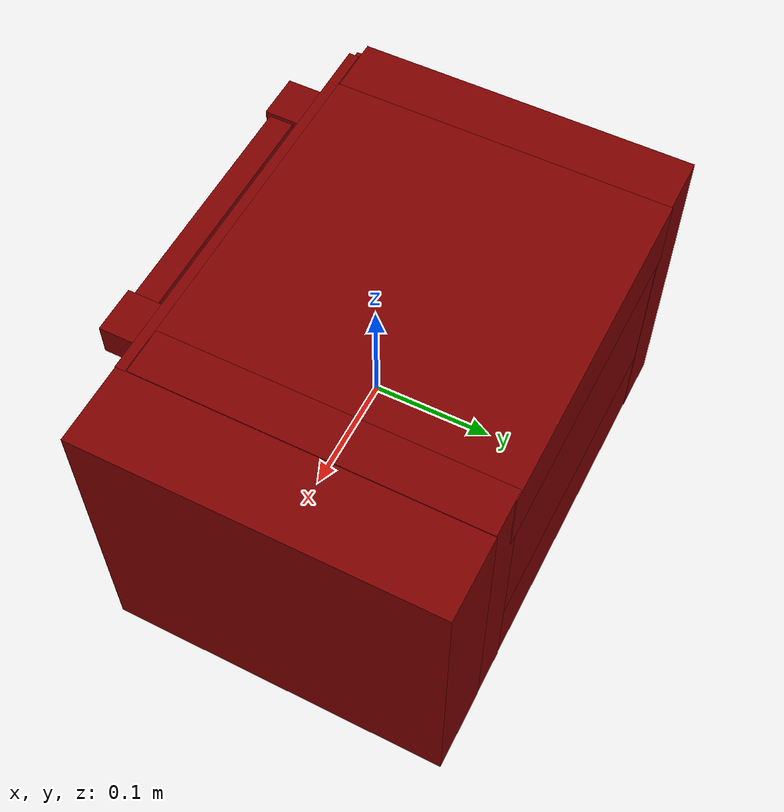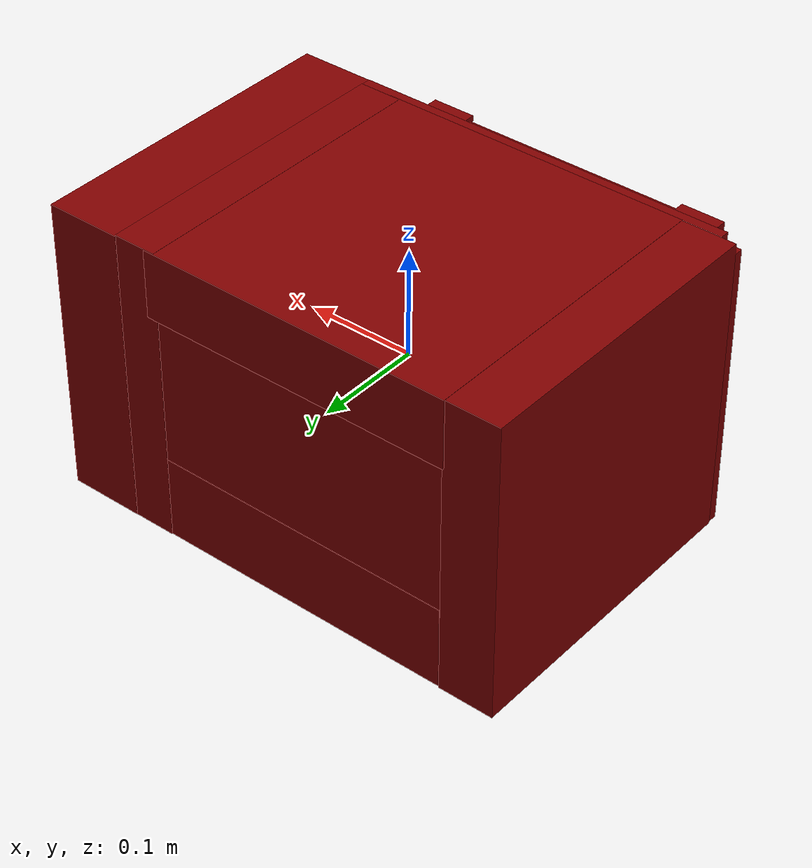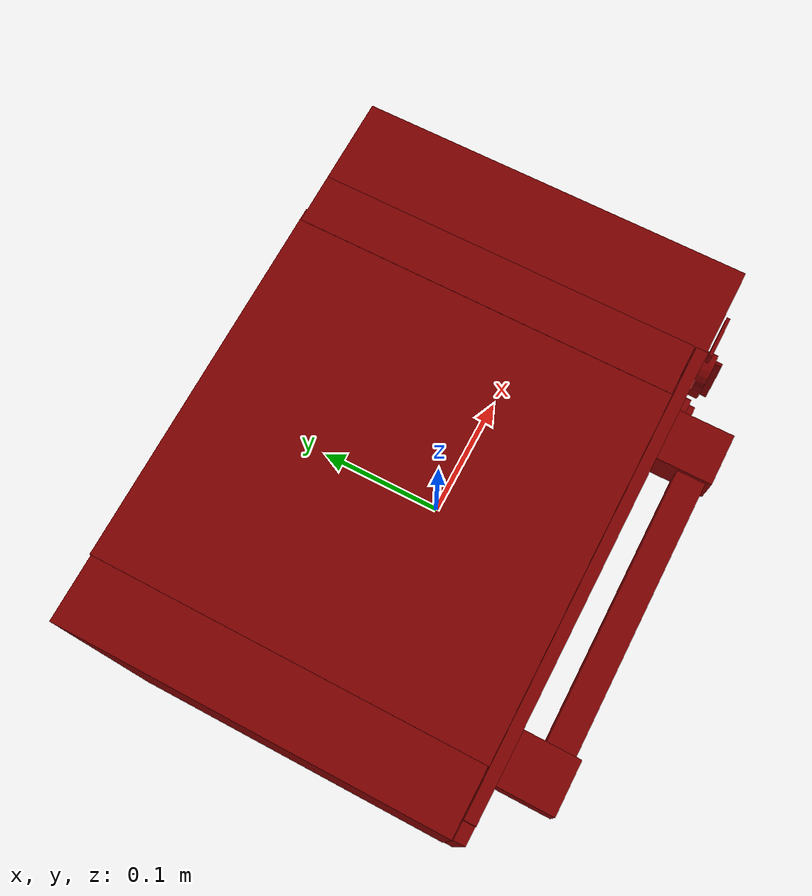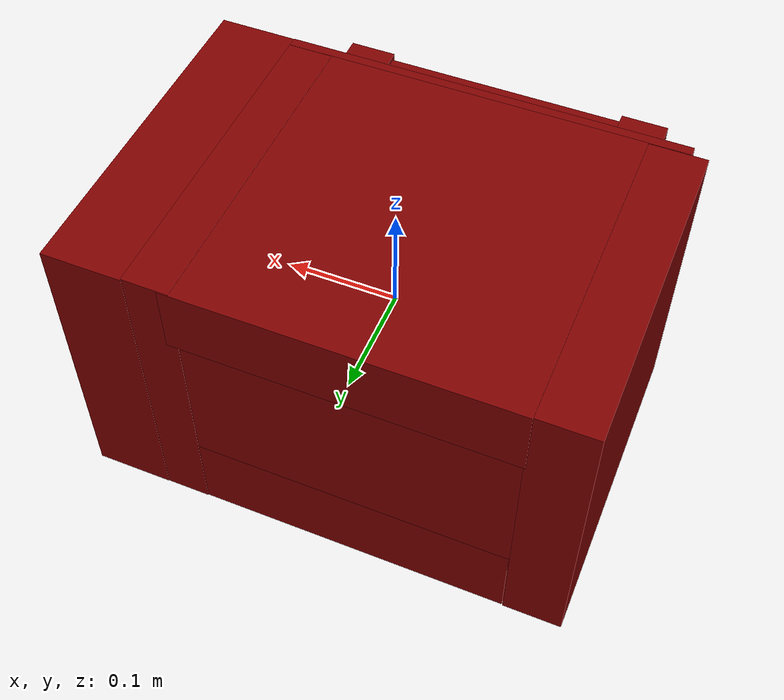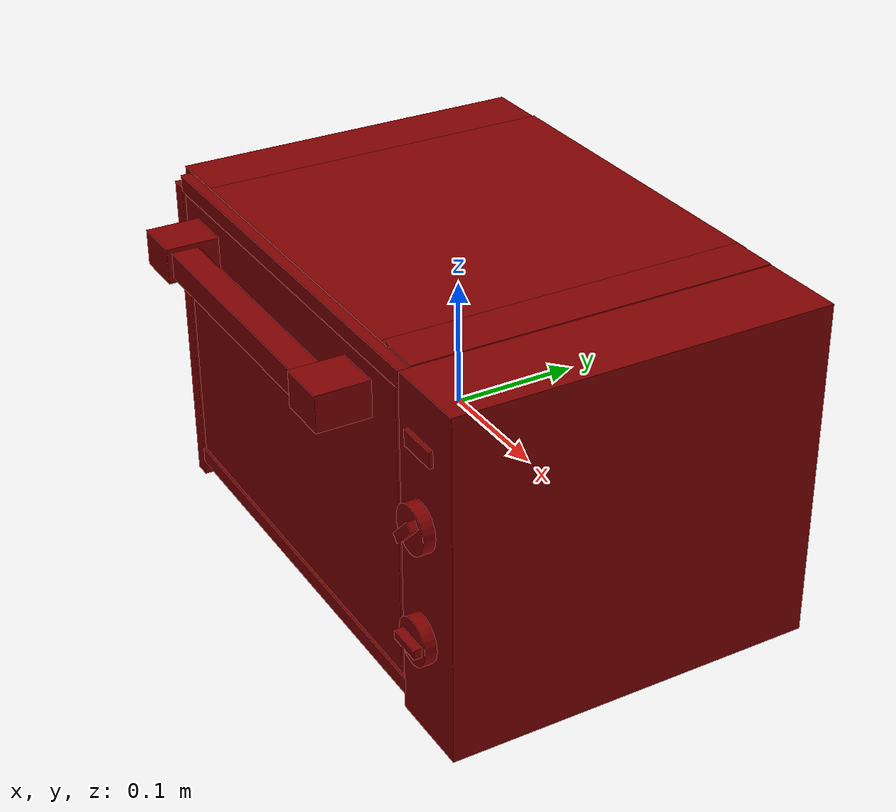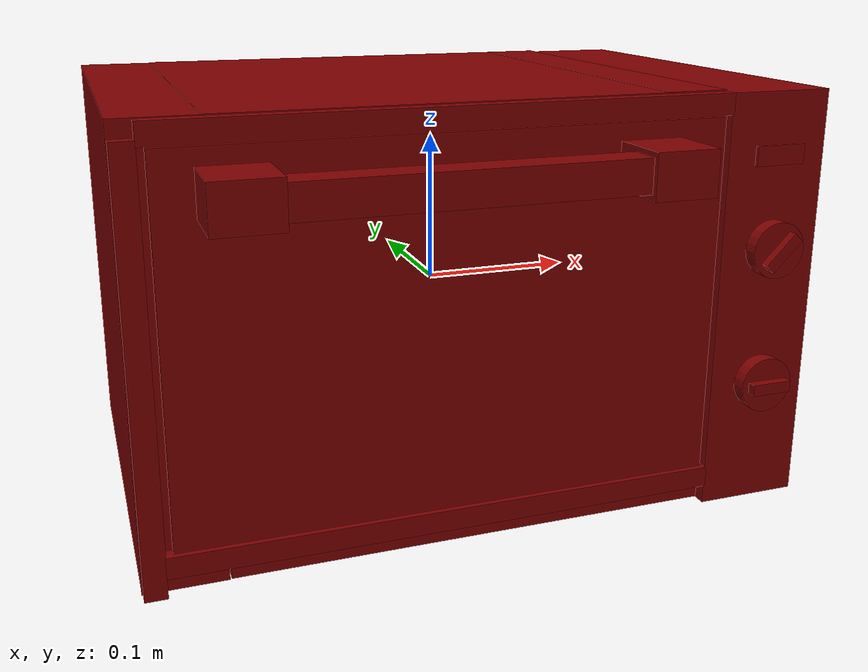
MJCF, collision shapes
<?xml version='1.0' encoding='UTF-8'?>
<mujoco model="model">
  <option timestep="0.002" gravity="0.0 0.0 -9.81"/>
  <compiler angle="radian"/>
  <asset>
    <mesh file="visuals/door.obj" name="door_vis"/>
    <mesh file="visuals/knob_temp.obj" name="knob_temp_vis"/>
    <mesh file="visuals/knob_time.obj" name="knob_time_vis"/>
    <mesh file="visuals/rack0.obj" name="rack0_vis"/>
    <mesh file="visuals/Body001.obj" name="Body001_vis"/>
    <mesh file="visuals/Button001.obj" name="Button001_vis"/>
    <mesh file="visuals/window.obj" name="window_vis"/>
    <texture file="visuals/T_BC001.png" name="Body001_material" type="2d"/>
    <material name="Body001_material" rgba="1 1 1 1.0" texture="Body001_material" shininess="0.1" specular="0.9"/>
    <texture file="visuals/T_BC001.png" name="door_material" type="2d"/>
    <material name="door_material" rgba="1 1 1 1.0" texture="door_material" shininess="0.1" specular="0.9"/>
    <texture file="visuals/T_BC001.png" name="window_material" type="2d"/>
    <material name="window_material" rgba="1 1 1 0.800000011920929" texture="window_material" shininess="0.1" specular="0.9"/>
    <texture file="visuals/T_BC001.png" name="knob_temp_material" type="2d"/>
    <material name="knob_temp_material" rgba="1 1 1 1.0" texture="knob_temp_material" shininess="0.1" specular="0.9"/>
    <texture file="visuals/T_BC001.png" name="knob_time_material" type="2d"/>
    <material name="knob_time_material" rgba="1 1 1 1.0" texture="knob_time_material" shininess="0.1" specular="0.9"/>
    <texture file="visuals/T_BC001.png" name="rack0_material" type="2d"/>
    <material name="rack0_material" rgba="1 1 1 1.0" texture="rack0_material" shininess="0.1" specular="0.9"/>
    <texture file="visuals/T_BC001.png" name="Button001_material" type="2d"/>
    <material name="Button001_material" rgba="1 1 1 1.0" texture="Button001_material" shininess="0.1" specular="0.9"/>
  </asset>
  <default>
    <default class="visual">
      <geom conaffinity="0" contype="0" group="1" type="mesh"/>
    </default>
    <default class="collision">
      <geom group="0" rgba="0.5 0 0 0.5"/>
    </default>
    <default class="spawn">
      <geom group="0" rgba="1 1 1 0.5" contype="0" conaffinity="0"/>
      <site group="0" rgba="1 1 1 0.5"/>
    </default>
    <default class="region">
      <geom group="1" conaffinity="0" contype="0" rgba="0 1 0 0"/>
    </default>
  </default>
  <worldbody>
    <body>
      <body name="object">
        <geom mesh="Body001_vis" type="mesh" solimp="0.998 0.998 0.001" solref="0.001 1" friction="0.95 0.3 0.1" class="visual" material="Body001_material"/>
        <geom class="collision" type="box" pos="-0.1932327300310135 0.023562701418995857 -0.0002324962115380913" size="0.02562784031033516 0.144892156124115 0.1380542665719986" quat="1.0 0.0 0.0 0.0"/>
        <geom class="collision" type="box" pos="0.18368476629257202 0.019207939505577087 -0.00012853697990067303" size="0.03454463183879852 0.1497284322977066 0.13750870525836945" quat="1.0 0.0 0.0 0.0"/>
        <geom class="collision" type="box" pos="-0.02491343580186367 0.023717664182186127 0.10706508159637451" size="0.14444921910762787 0.14566195011138916 0.03105258382856846" quat="1.0 0.0 0.0 0.0"/>
        <geom class="collision" type="box" pos="0.0003365774464327842 0.023008903488516808 -0.0987321212887764" size="0.1671508103609085 0.14517800509929657 0.03858890011906624" quat="1.0 0.0 0.0 0.0"/>
        <geom class="collision" type="box" pos="-0.013287878595292568 0.12078098952770233 0.026276038959622383" size="0.15798072516918182 0.047216691076755524 0.10450322926044464" quat="1.0 0.0 0.0 0.0"/>
        <geom class="collision" type="box" pos="0.12975217401981354 0.02365814335644245 0.0002771170693449676" size="0.019920380786061287 0.1448923498392105 0.13800153136253357" quat="1.0 0.0 0.0 0.0"/>
        <geom class="collision" type="box" pos="-0.21137258410453796 -0.12661521136760712 -0.00518137589097023" size="0.006847899407148361 0.0043335664086043835 0.13252513110637665" quat="1.0 0.0 0.0 0.0"/>
        <geom class="collision" type="box" pos="-0.027426209300756454 -0.1266152262687683 0.13058575987815857" size="0.1774577498435974 0.004333584103733301 0.006847981829196215" quat="1.0 0.0 0.0 0.0"/>
        <geom class="collision" type="box" pos="-0.027426209300756454 -0.1266152262687683 -0.1185009628534317" size="0.17745813727378845 0.004333584103733301 0.006847988814115524" quat="1.0 0.0 0.0 0.0"/>
        <geom class="collision" type="box" pos="-0.1652856320142746 -0.029180819168686867 0.02524438686668873" size="0.0031693163327872753 0.08165861666202545 0.003685700474306941" quat="1.0 0.0 0.0 0.0"/>
        <geom class="collision" type="box" pos="-0.1652856320142746 -0.029180819168686867 -0.0014495676150545478" size="0.0031693163327872753 0.08165861666202545 0.0024835069198161364" quat="1.0 0.0 0.0 0.0"/>
        <geom class="collision" type="box" pos="-0.1652856320142746 -0.029180819168686867 -0.03261305391788483" size="0.0031693163327872753 0.08165861666202545 0.003685710020363331" quat="1.0 0.0 0.0 0.0"/>
        <geom class="collision" type="box" pos="0.10883291065692902 -0.029180819168686867 0.02524438686668873" size="0.0031693163327872753 0.08165861666202545 0.003685714676976204" quat="1.0 0.0 0.0 0.0"/>
        <geom class="collision" type="box" pos="0.10883291065692902 -0.029180819168686867 -0.0019221227848902345" size="0.0031693163327872753 0.08165861666202545 0.0024835141375660896" quat="1.0 0.0 0.0 0.0"/>
        <geom class="collision" type="box" pos="0.10883291065692902 -0.029180819168686867 -0.03261305391788483" size="0.0031693163327872753 0.08165861666202545 0.0036857242230325937" quat="1.0 0.0 0.0 0.0"/>
        <body name="door">
          <joint axis="1.0 0.0 0.0" pos="-0.028417732566595078 -0.13098841905593872 -0.10996166616678238" limited="true" name="door_joint" range="0.0 1.3707963267948966" type="hinge" damping="1" frictionloss="1" armature=".01" stiffness="0.5" springref="-1"/>
          <geom mesh="door_vis" type="mesh" solimp="0.998 0.998 0.001" solref="0.001 1" friction="0.95 0.3 0.1" class="visual" material="door_material"/>
          <geom class="collision" type="box" pos="-0.027483291923999786 -0.12640777230262756 0.006602500565350056" size="0.17244963347911835 0.0040414961986243725 0.11639589071273804" quat="1.0 0.0 0.0 0.0" name="door_main"/>
          <geom class="collision" type="box" pos="-0.1559285819530487 -0.15252259373664856 0.09821559488773346" size="0.020086579024791718 0.020980771631002426 0.014291288331151009" quat="1.0 0.0 0.0 0.0"/>
          <geom class="collision" type="box" pos="0.09332048892974854 -0.15252259373664856 0.09821559488773346" size="0.020086579024791718 0.020980792120099068 0.014291313476860523" quat="1.0 0.0 0.0 0.0"/>
          <geom class="collision" type="box" pos="-0.02982192300260067 -0.1590261459350586 0.09833655506372452" size="0.10777268558740616 0.010604559443891048 0.01060456782579422" quat="1.0 0.0 0.0 0.0" name="door_handle_main"/>
          <body name="window">
            <geom mesh="window_vis" type="mesh" solimp="0.998 0.998 0.001" solref="0.001 1" friction="0.95 0.3 0.1" class="visual" material="window_material"/>
            <geom class="collision" type="box" pos="-0.027810823172330856 -0.12754644453525543 0.008148572407662868" size="0.14387276768684387 0.0022440413013100624 0.07341501116752625" quat="1.0 0.0 0.0 0.0"/>
          </body>
        </body>
        <body name="knob_temp">
          <joint axis="0.0 1.0 0.0" pos="0.18314239382743835 -0.13682837784290314 -0.052383847534656525" limited="true" name="knob_temp_joint" range="0.0 5.410520681182422" type="hinge" damping="0.05" armature="1" frictionloss="0.75"/>
          <geom mesh="knob_temp_vis" type="mesh" solimp="0.998 0.998 0.001" solref="0.001 1" friction="0.95 0.3 0.1" class="visual" material="knob_temp_material"/>
          <geom class="collision" type="cylinder" pos="0.1832025796175003 -0.13755644857883453 -0.05271351709961891" size="0.018340058624744415 0.004675981123000383" quat="0.7071067094802856 0.70710688829422 0.0 0.0" friction="100 0.5 0.01"/>
          <geom class="collision" type="box" pos="0.18332508206367493 -0.14358869194984436 -0.05282038077712059" size="0.01368988398462534 0.004699192941188812 0.003742998233065009" quat="1.0 0.0 0.0 0.0" name="knob_temp_main" friction="100 0.5 0.01"/>
        </body>
        <body name="knob_time">
          <joint axis="0.0 1.0 0.0" pos="0.18314242362976074 -0.13682837784290314 0.038146428763866425" limited="true" name="knob_time_joint" range="0.0 5.497787143782138" type="hinge" damping="0.05" armature="1" frictionloss="0.75"/>
          <geom mesh="knob_time_vis" type="mesh" solimp="0.998 0.998 0.001" solref="0.001 1" friction="0.95 0.3 0.1" class="visual" material="knob_time_material"/>
          <geom class="collision" type="cylinder" pos="0.18312975764274597 -0.13768555223941803 0.03828324005007744" size="0.018340058624744415 0.004675981123000383" quat="0.7071067094802856 0.70710688829422 0.0 0.0" friction="100 0.5 0.01"/>
          <geom class="collision" type="box" pos="0.1831539422273636 -0.14289788901805878 0.03798419609665871" size="0.013689884915947914 0.0052930451929569244 0.003742998233065009" quat="0.9220510125160217 -9.487234030336206e-15 -0.38706842064857483 -5.200607233746268e-08" name="knob_time_main" friction="100 0.5 0.01"/>
        </body>
        <body name="rack0">
          <geom class="region" name="reg_rack0" type="box" pos="-0.027942124754190445 -0.03075636364519596 0.043819047044962645" size="0.13461294195055962 0.07885124890506268 0.03319090448692441"/>
          <joint axis="0.0 -1.0 0.0" pos="-0.028300438076257706 -0.029593314975500107 0.007739551365375519" limited="true" name="rack0_joint" range="0.0 0.15" type="slide" damping="1" frictionloss="1" armature=".01" stiffness="0.05"/>
          <geom mesh="rack0_vis" type="mesh" solimp="0.998 0.998 0.001" solref="0.001 1" friction="0.95 0.3 0.1" class="visual" material="rack0_material"/>
          <geom class="collision" type="box" pos="-0.029132431373000145 -0.02918081544339657 0.005697024520486593" size="0.13742515444755554 0.08026933670043945 0.0034544342197477818" quat="1.0 0.0 0.0 0.0"/>
        </body>
        <body name="Button001">
          <joint axis="0.0 1.0 0.0" pos="0.18294595181941986 -0.13352136313915253 0.09825830161571503" limited="true" name="Button001_joint" range="0.0 0.002" type="slide" damping="1" frictionloss="1" armature=".01" stiffness="4" springref="0"/>
          <geom mesh="Button001_vis" type="mesh" solimp="0.998 0.998 0.001" solref="0.001 1" friction="0.95 0.3 0.1" class="visual" material="Button001_material"/>
          <geom class="collision" type="box" pos="0.18284517526626587 -0.13477708399295807 0.09826550632715225" size="0.016775285825133324 0.0013419415336102247 0.006294476334005594" quat="1.0 0.0 0.0 0.0"/>
        </body>
        <geom class="region" name="reg_int" type="box" pos="-0.028392337262630463 -0.022431448101997375 0.007174955680966377" size="0.1331147307753563 0.09477679973840714 0.06648438780009747"/>
        <geom class="region" name="reg_main" type="box" pos="3.725290298461914e-09 0.019076034426689148 0.0" size="0.22035908496379852 0.15136554634571076 0.1395619342327118"/>
      </body>
    </body>
  </worldbody>
  <actuator>
    <motor name="door_joint_actuator" joint="door_joint" gear="50"/>
    <motor name="knob_temp_joint_actuator" joint="knob_temp_joint" gear="50"/>
    <motor name="knob_time_joint_actuator" joint="knob_time_joint" gear="50"/>
    <motor name="rack0_joint_actuator" joint="rack0_joint" gear="50"/>
    <motor name="Button001_joint_actuator" joint="Button001_joint" gear="0.5"/>
  </actuator>
</mujoco>
